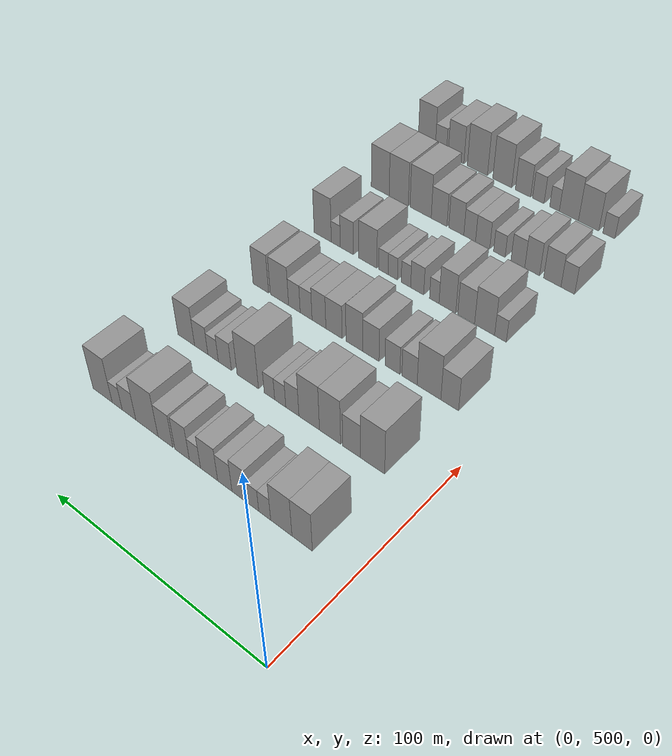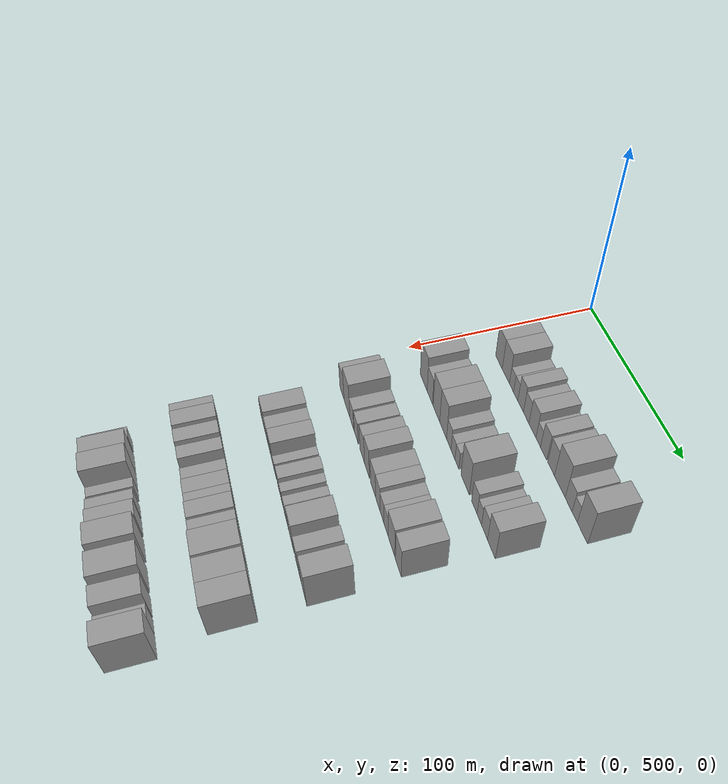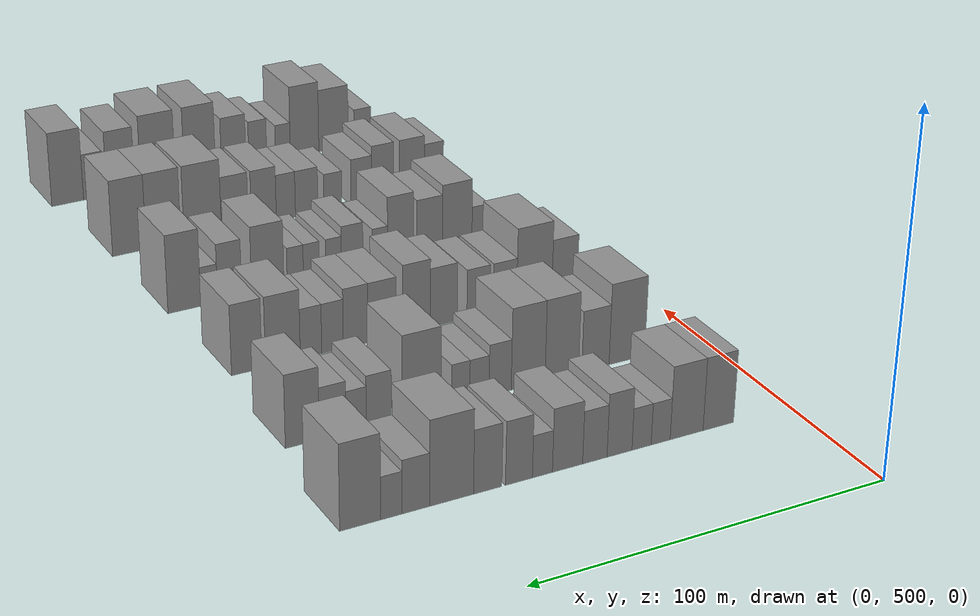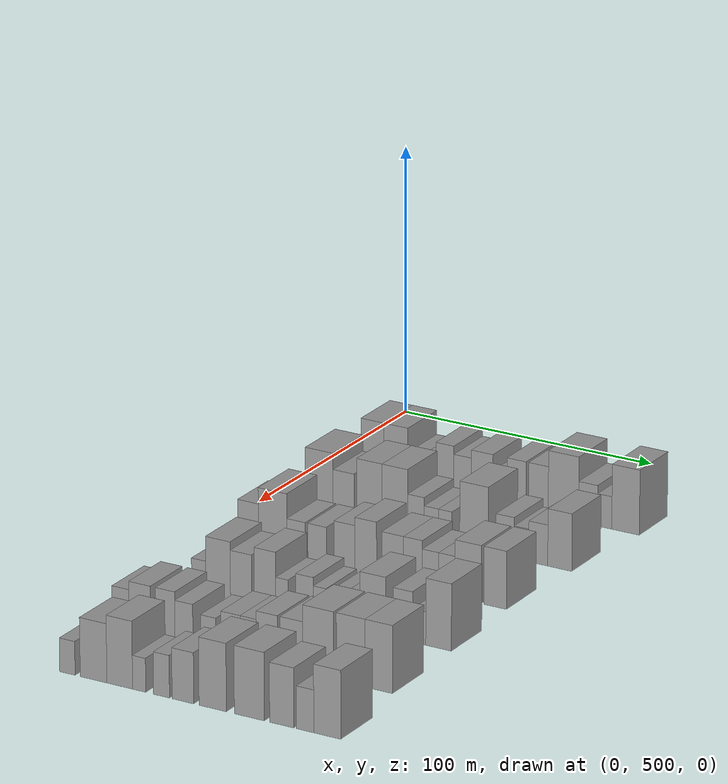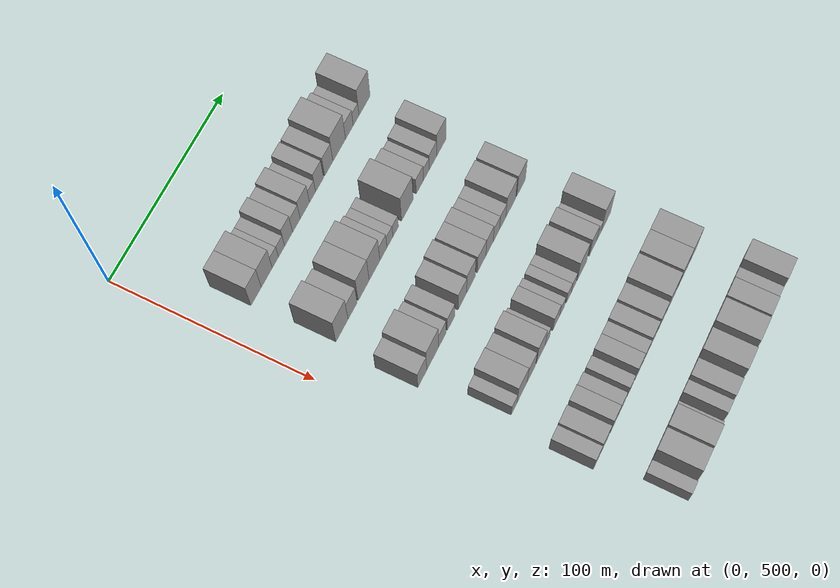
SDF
<sdf version="1.6">
 <world name="default">
  <model name="building_131">
   <static>1</static>
   <pose>50.0000 521.7408 0 0.000000 0.000000 0.000000</pose>
   <link name="link">
    <pose>0 0 10.50 0 0 0</pose>
    <collision name="collision"><geometry><box><size>20.0000 9.2348 21.0000</size></box></geometry></collision>
    <visual name="visual">
     <cast_shadows>0</cast_shadows>
     <geometry><box><size>20.0000 9.2348 21.0000</size></box></geometry>
     <material>
      <script>
       <uri>model://grey_wall/materials/scripts</uri>
       <uri>model://grey_wall/materials/textures</uri>
       <name>vrc/grey_wall</name>
      </script>
     </material>
    </visual>
   </link>
  </model>
  <model name="building_132">
   <static>1</static>
   <pose>50.0000 531.2715 0 0.000000 0.000000 0.000000</pose>
   <link name="link">
    <pose>0 0 10.50 0 0 0</pose>
    <collision name="collision"><geometry><box><size>20.0000 9.8266 21.0000</size></box></geometry></collision>
    <visual name="visual">
     <cast_shadows>0</cast_shadows>
     <geometry><box><size>20.0000 9.8266 21.0000</size></box></geometry>
     <material>
      <script>
       <uri>model://grey_wall/materials/scripts</uri>
       <uri>model://grey_wall/materials/textures</uri>
       <name>vrc/grey_wall</name>
      </script>
     </material>
    </visual>
   </link>
  </model>
  <model name="building_133">
   <static>1</static>
   <pose>50.0000 538.9945 0 0.000000 0.000000 0.000000</pose>
   <link name="link">
    <pose>0 0 6.00 0 0 0</pose>
    <collision name="collision"><geometry><box><size>20.0000 5.6192 12.0000</size></box></geometry></collision>
    <visual name="visual">
     <cast_shadows>0</cast_shadows>
     <geometry><box><size>20.0000 5.6192 12.0000</size></box></geometry>
     <material>
      <script>
       <uri>model://grey_wall/materials/scripts</uri>
       <uri>model://grey_wall/materials/textures</uri>
       <name>vrc/grey_wall</name>
      </script>
     </material>
    </visual>
   </link>
  </model>
  <model name="building_134">
   <static>1</static>
   <pose>50.0000 544.6133 0 0.000000 0.000000 0.000000</pose>
   <link name="link">
    <pose>0 0 6.00 0 0 0</pose>
    <collision name="collision"><geometry><box><size>20.0000 5.6184 12.0000</size></box></geometry></collision>
    <visual name="visual">
     <cast_shadows>0</cast_shadows>
     <geometry><box><size>20.0000 5.6184 12.0000</size></box></geometry>
     <material>
      <script>
       <uri>model://grey_wall/materials/scripts</uri>
       <uri>model://grey_wall/materials/textures</uri>
       <name>vrc/grey_wall</name>
      </script>
     </material>
    </visual>
   </link>
  </model>
  <model name="building_135">
   <static>1</static>
   <pose>50.0000 551.0508 0 0.000000 0.000000 0.000000</pose>
   <link name="link">
    <pose>0 0 9.00 0 0 0</pose>
    <collision name="collision"><geometry><box><size>20.0000 7.2566 18.0000</size></box></geometry></collision>
    <visual name="visual">
     <cast_shadows>0</cast_shadows>
     <geometry><box><size>20.0000 7.2566 18.0000</size></box></geometry>
     <material>
      <script>
       <uri>model://grey_wall/materials/scripts</uri>
       <uri>model://grey_wall/materials/textures</uri>
       <name>vrc/grey_wall</name>
      </script>
     </material>
    </visual>
   </link>
  </model>
  <model name="building_136">
   <static>1</static>
   <pose>50.0000 558.1963 0 0.000000 0.000000 0.000000</pose>
   <link name="link">
    <pose>0 0 7.50 0 0 0</pose>
    <collision name="collision"><geometry><box><size>20.0000 7.0344 15.0000</size></box></geometry></collision>
    <visual name="visual">
     <cast_shadows>0</cast_shadows>
     <geometry><box><size>20.0000 7.0344 15.0000</size></box></geometry>
     <material>
      <script>
       <uri>model://grey_wall/materials/scripts</uri>
       <uri>model://grey_wall/materials/textures</uri>
       <name>vrc/grey_wall</name>
      </script>
     </material>
    </visual>
   </link>
  </model>
  <model name="building_137">
   <static>1</static>
   <pose>50.0000 566.0190 0 0.000000 0.000000 0.000000</pose>
   <link name="link">
    <pose>0 0 9.00 0 0 0</pose>
    <collision name="collision"><geometry><box><size>20.0000 8.6110 18.0000</size></box></geometry></collision>
    <visual name="visual">
     <cast_shadows>0</cast_shadows>
     <geometry><box><size>20.0000 8.6110 18.0000</size></box></geometry>
     <material>
      <script>
       <uri>model://grey_wall/materials/scripts</uri>
       <uri>model://grey_wall/materials/textures</uri>
       <name>vrc/grey_wall</name>
      </script>
     </material>
    </visual>
   </link>
  </model>
  <model name="building_138">
   <static>1</static>
   <pose>50.0000 573.1528 0 0.000000 0.000000 0.000000</pose>
   <link name="link">
    <pose>0 0 6.00 0 0 0</pose>
    <collision name="collision"><geometry><box><size>20.0000 5.6566 12.0000</size></box></geometry></collision>
    <visual name="visual">
     <cast_shadows>0</cast_shadows>
     <geometry><box><size>20.0000 5.6566 12.0000</size></box></geometry>
     <material>
      <script>
       <uri>model://grey_wall/materials/scripts</uri>
       <uri>model://grey_wall/materials/textures</uri>
       <name>vrc/grey_wall</name>
      </script>
     </material>
    </visual>
   </link>
  </model>
  <model name="building_139">
   <static>1</static>
   <pose>50.0000 579.7498 0 0.000000 0.000000 0.000000</pose>
   <link name="link">
    <pose>0 0 9.00 0 0 0</pose>
    <collision name="collision"><geometry><box><size>20.0000 7.5374 18.0000</size></box></geometry></collision>
    <visual name="visual">
     <cast_shadows>0</cast_shadows>
     <geometry><box><size>20.0000 7.5374 18.0000</size></box></geometry>
     <material>
      <script>
       <uri>model://grey_wall/materials/scripts</uri>
       <uri>model://grey_wall/materials/textures</uri>
       <name>vrc/grey_wall</name>
      </script>
     </material>
    </visual>
   </link>
  </model>
  <model name="building_140">
   <static>1</static>
   <pose>50.0000 588.4278 0 0.000000 0.000000 0.000000</pose>
   <link name="link">
    <pose>0 0 9.00 0 0 0</pose>
    <collision name="collision"><geometry><box><size>20.0000 7.8184 18.0000</size></box></geometry></collision>
    <visual name="visual">
     <cast_shadows>0</cast_shadows>
     <geometry><box><size>20.0000 7.8184 18.0000</size></box></geometry>
     <material>
      <script>
       <uri>model://grey_wall/materials/scripts</uri>
       <uri>model://grey_wall/materials/textures</uri>
       <name>vrc/grey_wall</name>
      </script>
     </material>
    </visual>
   </link>
  </model>
  <model name="building_141">
   <static>1</static>
   <pose>50.0000 598.3368 0 0.000000 0.000000 0.000000</pose>
   <link name="link">
    <pose>0 0 12.00 0 0 0</pose>
    <collision name="collision"><geometry><box><size>20.0000 11.9997 24.0000</size></box></geometry></collision>
    <visual name="visual">
     <cast_shadows>0</cast_shadows>
     <geometry><box><size>20.0000 11.9997 24.0000</size></box></geometry>
     <material>
      <script>
       <uri>model://grey_wall/materials/scripts</uri>
       <uri>model://grey_wall/materials/textures</uri>
       <name>vrc/grey_wall</name>
      </script>
     </material>
    </visual>
   </link>
  </model>
  <model name="building_142">
   <static>1</static>
   <pose>50.0000 608.0740 0 0.000000 0.000000 0.000000</pose>
   <link name="link">
    <pose>0 0 7.50 0 0 0</pose>
    <collision name="collision"><geometry><box><size>20.0000 7.4747 15.0000</size></box></geometry></collision>
    <visual name="visual">
     <cast_shadows>0</cast_shadows>
     <geometry><box><size>20.0000 7.4747 15.0000</size></box></geometry>
     <material>
      <script>
       <uri>model://grey_wall/materials/scripts</uri>
       <uri>model://grey_wall/materials/textures</uri>
       <name>vrc/grey_wall</name>
      </script>
     </material>
    </visual>
   </link>
  </model>
  <model name="building_143">
   <static>1</static>
   <pose>50.0000 614.6092 0 0.000000 0.000000 0.000000</pose>
   <link name="link">
    <pose>0 0 6.00 0 0 0</pose>
    <collision name="collision"><geometry><box><size>20.0000 5.5957 12.0000</size></box></geometry></collision>
    <visual name="visual">
     <cast_shadows>0</cast_shadows>
     <geometry><box><size>20.0000 5.5957 12.0000</size></box></geometry>
     <material>
      <script>
       <uri>model://grey_wall/materials/scripts</uri>
       <uri>model://grey_wall/materials/textures</uri>
       <name>vrc/grey_wall</name>
      </script>
     </material>
    </visual>
   </link>
  </model>
  <model name="building_144">
   <static>1</static>
   <pose>50.0000 622.8073 0 0.000000 0.000000 0.000000</pose>
   <link name="link">
    <pose>0 0 12.00 0 0 0</pose>
    <collision name="collision"><geometry><box><size>20.0000 10.8005 24.0000</size></box></geometry></collision>
    <visual name="visual">
     <cast_shadows>0</cast_shadows>
     <geometry><box><size>20.0000 10.8005 24.0000</size></box></geometry>
     <material>
      <script>
       <uri>model://grey_wall/materials/scripts</uri>
       <uri>model://grey_wall/materials/textures</uri>
       <name>vrc/grey_wall</name>
      </script>
     </material>
    </visual>
   </link>
  </model>
  <model name="building_270">
   <static>1</static>
   <pose>90.0000 524.2564 0 0.000000 0.000000 0.000000</pose>
   <link name="link">
    <pose>0 0 12.00 0 0 0</pose>
    <collision name="collision"><geometry><box><size>20.0000 11.1245 24.0000</size></box></geometry></collision>
    <visual name="visual">
     <cast_shadows>0</cast_shadows>
     <geometry><box><size>20.0000 11.1245 24.0000</size></box></geometry>
     <material>
      <script>
       <uri>model://grey_wall/materials/scripts</uri>
       <uri>model://grey_wall/materials/textures</uri>
       <name>vrc/grey_wall</name>
      </script>
     </material>
    </visual>
   </link>
  </model>
  <model name="building_271">
   <static>1</static>
   <pose>90.0000 534.0324 0 0.000000 0.000000 0.000000</pose>
   <link name="link">
    <pose>0 0 9.00 0 0 0</pose>
    <collision name="collision"><geometry><box><size>20.0000 8.4276 18.0000</size></box></geometry></collision>
    <visual name="visual">
     <cast_shadows>0</cast_shadows>
     <geometry><box><size>20.0000 8.4276 18.0000</size></box></geometry>
     <material>
      <script>
       <uri>model://grey_wall/materials/scripts</uri>
       <uri>model://grey_wall/materials/textures</uri>
       <name>vrc/grey_wall</name>
      </script>
     </material>
    </visual>
   </link>
  </model>
  <model name="building_272">
   <static>1</static>
   <pose>90.0000 544.3487 0 0.000000 0.000000 0.000000</pose>
   <link name="link">
    <pose>0 0 12.00 0 0 0</pose>
    <collision name="collision"><geometry><box><size>20.0000 10.2050 24.0000</size></box></geometry></collision>
    <visual name="visual">
     <cast_shadows>0</cast_shadows>
     <geometry><box><size>20.0000 10.2050 24.0000</size></box></geometry>
     <material>
      <script>
       <uri>model://grey_wall/materials/scripts</uri>
       <uri>model://grey_wall/materials/textures</uri>
       <name>vrc/grey_wall</name>
      </script>
     </material>
    </visual>
   </link>
  </model>
  <model name="building_273">
   <static>1</static>
   <pose>90.0000 554.5159 0 0.000000 0.000000 0.000000</pose>
   <link name="link">
    <pose>0 0 12.00 0 0 0</pose>
    <collision name="collision"><geometry><box><size>20.0000 10.1295 24.0000</size></box></geometry></collision>
    <visual name="visual">
     <cast_shadows>0</cast_shadows>
     <geometry><box><size>20.0000 10.1295 24.0000</size></box></geometry>
     <material>
      <script>
       <uri>model://grey_wall/materials/scripts</uri>
       <uri>model://grey_wall/materials/textures</uri>
       <name>vrc/grey_wall</name>
      </script>
     </material>
    </visual>
   </link>
  </model>
  <model name="building_274">
   <static>1</static>
   <pose>90.0000 562.8839 0 0.000000 0.000000 0.000000</pose>
   <link name="link">
    <pose>0 0 7.50 0 0 0</pose>
    <collision name="collision"><geometry><box><size>20.0000 6.6065 15.0000</size></box></geometry></collision>
    <visual name="visual">
     <cast_shadows>0</cast_shadows>
     <geometry><box><size>20.0000 6.6065 15.0000</size></box></geometry>
     <material>
      <script>
       <uri>model://grey_wall/materials/scripts</uri>
       <uri>model://grey_wall/materials/textures</uri>
       <name>vrc/grey_wall</name>
      </script>
     </material>
    </visual>
   </link>
  </model>
  <model name="building_275">
   <static>1</static>
   <pose>90.0000 569.0177 0 0.000000 0.000000 0.000000</pose>
   <link name="link">
    <pose>0 0 6.00 0 0 0</pose>
    <collision name="collision"><geometry><box><size>20.0000 5.6609 12.0000</size></box></geometry></collision>
    <visual name="visual">
     <cast_shadows>0</cast_shadows>
     <geometry><box><size>20.0000 5.6609 12.0000</size></box></geometry>
     <material>
      <script>
       <uri>model://grey_wall/materials/scripts</uri>
       <uri>model://grey_wall/materials/textures</uri>
       <name>vrc/grey_wall</name>
      </script>
     </material>
    </visual>
   </link>
  </model>
  <model name="building_276">
   <static>1</static>
   <pose>90.0000 574.5336 0 0.000000 0.000000 0.000000</pose>
   <link name="link">
    <pose>0 0 6.00 0 0 0</pose>
    <collision name="collision"><geometry><box><size>20.0000 5.3709 12.0000</size></box></geometry></collision>
    <visual name="visual">
     <cast_shadows>0</cast_shadows>
     <geometry><box><size>20.0000 5.3709 12.0000</size></box></geometry>
     <material>
      <script>
       <uri>model://grey_wall/materials/scripts</uri>
       <uri>model://grey_wall/materials/textures</uri>
       <name>vrc/grey_wall</name>
      </script>
     </material>
    </visual>
   </link>
  </model>
  <model name="building_277">
   <static>1</static>
   <pose>90.0000 585.8658 0 0.000000 0.000000 0.000000</pose>
   <link name="link">
    <pose>0 0 12.00 0 0 0</pose>
    <collision name="collision"><geometry><box><size>20.0000 11.2936 24.0000</size></box></geometry></collision>
    <visual name="visual">
     <cast_shadows>0</cast_shadows>
     <geometry><box><size>20.0000 11.2936 24.0000</size></box></geometry>
     <material>
      <script>
       <uri>model://grey_wall/materials/scripts</uri>
       <uri>model://grey_wall/materials/textures</uri>
       <name>vrc/grey_wall</name>
      </script>
     </material>
    </visual>
   </link>
  </model>
  <model name="building_278">
   <static>1</static>
   <pose>90.0000 598.0640 0 0.000000 0.000000 0.000000</pose>
   <link name="link">
    <pose>0 0 7.50 0 0 0</pose>
    <collision name="collision"><geometry><box><size>20.0000 7.1029 15.0000</size></box></geometry></collision>
    <visual name="visual">
     <cast_shadows>0</cast_shadows>
     <geometry><box><size>20.0000 7.1029 15.0000</size></box></geometry>
     <material>
      <script>
       <uri>model://grey_wall/materials/scripts</uri>
       <uri>model://grey_wall/materials/textures</uri>
       <name>vrc/grey_wall</name>
      </script>
     </material>
    </visual>
   </link>
  </model>
  <model name="building_279">
   <static>1</static>
   <pose>90.0000 604.4765 0 0.000000 0.000000 0.000000</pose>
   <link name="link">
    <pose>0 0 6.00 0 0 0</pose>
    <collision name="collision"><geometry><box><size>20.0000 5.7220 12.0000</size></box></geometry></collision>
    <visual name="visual">
     <cast_shadows>0</cast_shadows>
     <geometry><box><size>20.0000 5.7220 12.0000</size></box></geometry>
     <material>
      <script>
       <uri>model://grey_wall/materials/scripts</uri>
       <uri>model://grey_wall/materials/textures</uri>
       <name>vrc/grey_wall</name>
      </script>
     </material>
    </visual>
   </link>
  </model>
  <model name="building_280">
   <static>1</static>
   <pose>90.0000 611.0382 0 0.000000 0.000000 0.000000</pose>
   <link name="link">
    <pose>0 0 7.50 0 0 0</pose>
    <collision name="collision"><geometry><box><size>20.0000 7.4013 15.0000</size></box></geometry></collision>
    <visual name="visual">
     <cast_shadows>0</cast_shadows>
     <geometry><box><size>20.0000 7.4013 15.0000</size></box></geometry>
     <material>
      <script>
       <uri>model://grey_wall/materials/scripts</uri>
       <uri>model://grey_wall/materials/textures</uri>
       <name>vrc/grey_wall</name>
      </script>
     </material>
    </visual>
   </link>
  </model>
  <model name="building_281">
   <static>1</static>
   <pose>90.0000 619.4320 0 0.000000 0.000000 0.000000</pose>
   <link name="link">
    <pose>0 0 10.50 0 0 0</pose>
    <collision name="collision"><geometry><box><size>20.0000 9.3862 21.0000</size></box></geometry></collision>
    <visual name="visual">
     <cast_shadows>0</cast_shadows>
     <geometry><box><size>20.0000 9.3862 21.0000</size></box></geometry>
     <material>
      <script>
       <uri>model://grey_wall/materials/scripts</uri>
       <uri>model://grey_wall/materials/textures</uri>
       <name>vrc/grey_wall</name>
      </script>
     </material>
    </visual>
   </link>
  </model>
  <model name="building_398">
   <static>1</static>
   <pose>130.0000 520.1320 0 0.000000 0.000000 0.000000</pose>
   <link name="link">
    <pose>0 0 9.00 0 0 0</pose>
    <collision name="collision"><geometry><box><size>20.0000 8.2636 18.0000</size></box></geometry></collision>
    <visual name="visual">
     <cast_shadows>0</cast_shadows>
     <geometry><box><size>20.0000 8.2636 18.0000</size></box></geometry>
     <material>
      <script>
       <uri>model://grey_wall/materials/scripts</uri>
       <uri>model://grey_wall/materials/textures</uri>
       <name>vrc/grey_wall</name>
      </script>
     </material>
    </visual>
   </link>
  </model>
  <model name="building_399">
   <static>1</static>
   <pose>130.0000 529.9085 0 0.000000 0.000000 0.000000</pose>
   <link name="link">
    <pose>0 0 12.00 0 0 0</pose>
    <collision name="collision"><geometry><box><size>20.0000 11.2896 24.0000</size></box></geometry></collision>
    <visual name="visual">
     <cast_shadows>0</cast_shadows>
     <geometry><box><size>20.0000 11.2896 24.0000</size></box></geometry>
     <material>
      <script>
       <uri>model://grey_wall/materials/scripts</uri>
       <uri>model://grey_wall/materials/textures</uri>
       <name>vrc/grey_wall</name>
      </script>
     </material>
    </visual>
   </link>
  </model>
  <model name="building_400">
   <static>1</static>
   <pose>130.0000 539.2421 0 0.000000 0.000000 0.000000</pose>
   <link name="link">
    <pose>0 0 7.50 0 0 0</pose>
    <collision name="collision"><geometry><box><size>20.0000 7.3776 15.0000</size></box></geometry></collision>
    <visual name="visual">
     <cast_shadows>0</cast_shadows>
     <geometry><box><size>20.0000 7.3776 15.0000</size></box></geometry>
     <material>
      <script>
       <uri>model://grey_wall/materials/scripts</uri>
       <uri>model://grey_wall/materials/textures</uri>
       <name>vrc/grey_wall</name>
      </script>
     </material>
    </visual>
   </link>
  </model>
  <model name="building_401">
   <static>1</static>
   <pose>130.0000 547.5803 0 0.000000 0.000000 0.000000</pose>
   <link name="link">
    <pose>0 0 7.50 0 0 0</pose>
    <collision name="collision"><geometry><box><size>20.0000 7.2987 15.0000</size></box></geometry></collision>
    <visual name="visual">
     <cast_shadows>0</cast_shadows>
     <geometry><box><size>20.0000 7.2987 15.0000</size></box></geometry>
     <material>
      <script>
       <uri>model://grey_wall/materials/scripts</uri>
       <uri>model://grey_wall/materials/textures</uri>
       <name>vrc/grey_wall</name>
      </script>
     </material>
    </visual>
   </link>
  </model>
  <model name="building_402">
   <static>1</static>
   <pose>130.0000 558.3812 0 0.000000 0.000000 0.000000</pose>
   <link name="link">
    <pose>0 0 9.00 0 0 0</pose>
    <collision name="collision"><geometry><box><size>20.0000 8.3031 18.0000</size></box></geometry></collision>
    <visual name="visual">
     <cast_shadows>0</cast_shadows>
     <geometry><box><size>20.0000 8.3031 18.0000</size></box></geometry>
     <material>
      <script>
       <uri>model://grey_wall/materials/scripts</uri>
       <uri>model://grey_wall/materials/textures</uri>
       <name>vrc/grey_wall</name>
      </script>
     </material>
    </visual>
   </link>
  </model>
  <model name="building_403">
   <static>1</static>
   <pose>130.0000 566.7790 0 0.000000 0.000000 0.000000</pose>
   <link name="link">
    <pose>0 0 10.50 0 0 0</pose>
    <collision name="collision"><geometry><box><size>20.0000 8.4926 21.0000</size></box></geometry></collision>
    <visual name="visual">
     <cast_shadows>0</cast_shadows>
     <geometry><box><size>20.0000 8.4926 21.0000</size></box></geometry>
     <material>
      <script>
       <uri>model://grey_wall/materials/scripts</uri>
       <uri>model://grey_wall/materials/textures</uri>
       <name>vrc/grey_wall</name>
      </script>
     </material>
    </visual>
   </link>
  </model>
  <model name="building_404">
   <static>1</static>
   <pose>130.0000 577.2942 0 0.000000 0.000000 0.000000</pose>
   <link name="link">
    <pose>0 0 9.00 0 0 0</pose>
    <collision name="collision"><geometry><box><size>20.0000 8.5377 18.0000</size></box></geometry></collision>
    <visual name="visual">
     <cast_shadows>0</cast_shadows>
     <geometry><box><size>20.0000 8.5377 18.0000</size></box></geometry>
     <material>
      <script>
       <uri>model://grey_wall/materials/scripts</uri>
       <uri>model://grey_wall/materials/textures</uri>
       <name>vrc/grey_wall</name>
      </script>
     </material>
    </visual>
   </link>
  </model>
  <model name="building_405">
   <static>1</static>
   <pose>130.0000 585.2367 0 0.000000 0.000000 0.000000</pose>
   <link name="link">
    <pose>0 0 9.00 0 0 0</pose>
    <collision name="collision"><geometry><box><size>20.0000 7.3474 18.0000</size></box></geometry></collision>
    <visual name="visual">
     <cast_shadows>0</cast_shadows>
     <geometry><box><size>20.0000 7.3474 18.0000</size></box></geometry>
     <material>
      <script>
       <uri>model://grey_wall/materials/scripts</uri>
       <uri>model://grey_wall/materials/textures</uri>
       <name>vrc/grey_wall</name>
      </script>
     </material>
    </visual>
   </link>
  </model>
  <model name="building_406">
   <static>1</static>
   <pose>130.0000 592.1115 0 0.000000 0.000000 0.000000</pose>
   <link name="link">
    <pose>0 0 7.50 0 0 0</pose>
    <collision name="collision"><geometry><box><size>20.0000 6.4022 15.0000</size></box></geometry></collision>
    <visual name="visual">
     <cast_shadows>0</cast_shadows>
     <geometry><box><size>20.0000 6.4022 15.0000</size></box></geometry>
     <material>
      <script>
       <uri>model://grey_wall/materials/scripts</uri>
       <uri>model://grey_wall/materials/textures</uri>
       <name>vrc/grey_wall</name>
      </script>
     </material>
    </visual>
   </link>
  </model>
  <model name="building_407">
   <static>1</static>
   <pose>130.0000 598.4785 0 0.000000 0.000000 0.000000</pose>
   <link name="link">
    <pose>0 0 7.50 0 0 0</pose>
    <collision name="collision"><geometry><box><size>20.0000 6.3319 15.0000</size></box></geometry></collision>
    <visual name="visual">
     <cast_shadows>0</cast_shadows>
     <geometry><box><size>20.0000 6.3319 15.0000</size></box></geometry>
     <material>
      <script>
       <uri>model://grey_wall/materials/scripts</uri>
       <uri>model://grey_wall/materials/textures</uri>
       <name>vrc/grey_wall</name>
      </script>
     </material>
    </visual>
   </link>
  </model>
  <model name="building_408">
   <static>1</static>
   <pose>130.0000 606.7160 0 0.000000 0.000000 0.000000</pose>
   <link name="link">
    <pose>0 0 10.50 0 0 0</pose>
    <collision name="collision"><geometry><box><size>20.0000 10.1430 21.0000</size></box></geometry></collision>
    <visual name="visual">
     <cast_shadows>0</cast_shadows>
     <geometry><box><size>20.0000 10.1430 21.0000</size></box></geometry>
     <material>
      <script>
       <uri>model://grey_wall/materials/scripts</uri>
       <uri>model://grey_wall/materials/textures</uri>
       <name>vrc/grey_wall</name>
      </script>
     </material>
    </visual>
   </link>
  </model>
  <model name="building_409">
   <static>1</static>
   <pose>130.0000 617.1709 0 0.000000 0.000000 0.000000</pose>
   <link name="link">
    <pose>0 0 10.50 0 0 0</pose>
    <collision name="collision"><geometry><box><size>20.0000 8.7667 21.0000</size></box></geometry></collision>
    <visual name="visual">
     <cast_shadows>0</cast_shadows>
     <geometry><box><size>20.0000 8.7667 21.0000</size></box></geometry>
     <material>
      <script>
       <uri>model://grey_wall/materials/scripts</uri>
       <uri>model://grey_wall/materials/textures</uri>
       <name>vrc/grey_wall</name>
      </script>
     </material>
    </visual>
   </link>
  </model>
  <model name="building_540">
   <static>1</static>
   <pose>170.0000 525.2688 0 0.000000 0.000000 0.000000</pose>
   <link name="link">
    <pose>0 0 6.00 0 0 0</pose>
    <collision name="collision"><geometry><box><size>20.0000 5.6138 12.0000</size></box></geometry></collision>
    <visual name="visual">
     <cast_shadows>0</cast_shadows>
     <geometry><box><size>20.0000 5.6138 12.0000</size></box></geometry>
     <material>
      <script>
       <uri>model://grey_wall/materials/scripts</uri>
       <uri>model://grey_wall/materials/textures</uri>
       <name>vrc/grey_wall</name>
      </script>
     </material>
    </visual>
   </link>
  </model>
  <model name="building_541">
   <static>1</static>
   <pose>170.0000 532.9487 0 0.000000 0.000000 0.000000</pose>
   <link name="link">
    <pose>0 0 10.50 0 0 0</pose>
    <collision name="collision"><geometry><box><size>20.0000 9.7461 21.0000</size></box></geometry></collision>
    <visual name="visual">
     <cast_shadows>0</cast_shadows>
     <geometry><box><size>20.0000 9.7461 21.0000</size></box></geometry>
     <material>
      <script>
       <uri>model://grey_wall/materials/scripts</uri>
       <uri>model://grey_wall/materials/textures</uri>
       <name>vrc/grey_wall</name>
      </script>
     </material>
    </visual>
   </link>
  </model>
  <model name="building_542">
   <static>1</static>
   <pose>170.0000 541.9989 0 0.000000 0.000000 0.000000</pose>
   <link name="link">
    <pose>0 0 9.00 0 0 0</pose>
    <collision name="collision"><geometry><box><size>20.0000 8.3542 18.0000</size></box></geometry></collision>
    <visual name="visual">
     <cast_shadows>0</cast_shadows>
     <geometry><box><size>20.0000 8.3542 18.0000</size></box></geometry>
     <material>
      <script>
       <uri>model://grey_wall/materials/scripts</uri>
       <uri>model://grey_wall/materials/textures</uri>
       <name>vrc/grey_wall</name>
      </script>
     </material>
    </visual>
   </link>
  </model>
  <model name="building_543">
   <static>1</static>
   <pose>170.0000 551.4173 0 0.000000 0.000000 0.000000</pose>
   <link name="link">
    <pose>0 0 10.50 0 0 0</pose>
    <collision name="collision"><geometry><box><size>20.0000 8.4827 21.0000</size></box></geometry></collision>
    <visual name="visual">
     <cast_shadows>0</cast_shadows>
     <geometry><box><size>20.0000 8.4827 21.0000</size></box></geometry>
     <material>
      <script>
       <uri>model://grey_wall/materials/scripts</uri>
       <uri>model://grey_wall/materials/textures</uri>
       <name>vrc/grey_wall</name>
      </script>
     </material>
    </visual>
   </link>
  </model>
  <model name="building_544">
   <static>1</static>
   <pose>170.0000 558.0807 0 0.000000 0.000000 0.000000</pose>
   <link name="link">
    <pose>0 0 6.00 0 0 0</pose>
    <collision name="collision"><geometry><box><size>20.0000 4.8441 12.0000</size></box></geometry></collision>
    <visual name="visual">
     <cast_shadows>0</cast_shadows>
     <geometry><box><size>20.0000 4.8441 12.0000</size></box></geometry>
     <material>
      <script>
       <uri>model://grey_wall/materials/scripts</uri>
       <uri>model://grey_wall/materials/textures</uri>
       <name>vrc/grey_wall</name>
      </script>
     </material>
    </visual>
   </link>
  </model>
  <model name="building_545">
   <static>1</static>
   <pose>170.0000 566.9125 0 0.000000 0.000000 0.000000</pose>
   <link name="link">
    <pose>0 0 7.50 0 0 0</pose>
    <collision name="collision"><geometry><box><size>20.0000 6.8195 15.0000</size></box></geometry></collision>
    <visual name="visual">
     <cast_shadows>0</cast_shadows>
     <geometry><box><size>20.0000 6.8195 15.0000</size></box></geometry>
     <material>
      <script>
       <uri>model://grey_wall/materials/scripts</uri>
       <uri>model://grey_wall/materials/textures</uri>
       <name>vrc/grey_wall</name>
      </script>
     </material>
    </visual>
   </link>
  </model>
  <model name="building_546">
   <static>1</static>
   <pose>170.0000 572.8079 0 0.000000 0.000000 0.000000</pose>
   <link name="link">
    <pose>0 0 6.00 0 0 0</pose>
    <collision name="collision"><geometry><box><size>20.0000 4.9712 12.0000</size></box></geometry></collision>
    <visual name="visual">
     <cast_shadows>0</cast_shadows>
     <geometry><box><size>20.0000 4.9712 12.0000</size></box></geometry>
     <material>
      <script>
       <uri>model://grey_wall/materials/scripts</uri>
       <uri>model://grey_wall/materials/textures</uri>
       <name>vrc/grey_wall</name>
      </script>
     </material>
    </visual>
   </link>
  </model>
  <model name="building_547">
   <static>1</static>
   <pose>170.0000 579.7731 0 0.000000 0.000000 0.000000</pose>
   <link name="link">
    <pose>0 0 6.00 0 0 0</pose>
    <collision name="collision"><geometry><box><size>20.0000 4.9594 12.0000</size></box></geometry></collision>
    <visual name="visual">
     <cast_shadows>0</cast_shadows>
     <geometry><box><size>20.0000 4.9594 12.0000</size></box></geometry>
     <material>
      <script>
       <uri>model://grey_wall/materials/scripts</uri>
       <uri>model://grey_wall/materials/textures</uri>
       <name>vrc/grey_wall</name>
      </script>
     </material>
    </visual>
   </link>
  </model>
  <model name="building_548">
   <static>1</static>
   <pose>170.0000 584.7847 0 0.000000 0.000000 0.000000</pose>
   <link name="link">
    <pose>0 0 6.00 0 0 0</pose>
    <collision name="collision"><geometry><box><size>20.0000 5.0638 12.0000</size></box></geometry></collision>
    <visual name="visual">
     <cast_shadows>0</cast_shadows>
     <geometry><box><size>20.0000 5.0638 12.0000</size></box></geometry>
     <material>
      <script>
       <uri>model://grey_wall/materials/scripts</uri>
       <uri>model://grey_wall/materials/textures</uri>
       <name>vrc/grey_wall</name>
      </script>
     </material>
    </visual>
   </link>
  </model>
  <model name="building_549">
   <static>1</static>
   <pose>170.0000 593.2903 0 0.000000 0.000000 0.000000</pose>
   <link name="link">
    <pose>0 0 10.50 0 0 0</pose>
    <collision name="collision"><geometry><box><size>20.0000 9.9474 21.0000</size></box></geometry></collision>
    <visual name="visual">
     <cast_shadows>0</cast_shadows>
     <geometry><box><size>20.0000 9.9474 21.0000</size></box></geometry>
     <material>
      <script>
       <uri>model://grey_wall/materials/scripts</uri>
       <uri>model://grey_wall/materials/textures</uri>
       <name>vrc/grey_wall</name>
      </script>
     </material>
    </visual>
   </link>
  </model>
  <model name="building_550">
   <static>1</static>
   <pose>170.0000 604.9289 0 0.000000 0.000000 0.000000</pose>
   <link name="link">
    <pose>0 0 9.00 0 0 0</pose>
    <collision name="collision"><geometry><box><size>20.0000 7.3298 18.0000</size></box></geometry></collision>
    <visual name="visual">
     <cast_shadows>0</cast_shadows>
     <geometry><box><size>20.0000 7.3298 18.0000</size></box></geometry>
     <material>
      <script>
       <uri>model://grey_wall/materials/scripts</uri>
       <uri>model://grey_wall/materials/textures</uri>
       <name>vrc/grey_wall</name>
      </script>
     </material>
    </visual>
   </link>
  </model>
  <model name="building_551">
   <static>1</static>
   <pose>170.0000 611.1289 0 0.000000 0.000000 0.000000</pose>
   <link name="link">
    <pose>0 0 6.00 0 0 0</pose>
    <collision name="collision"><geometry><box><size>20.0000 5.0702 12.0000</size></box></geometry></collision>
    <visual name="visual">
     <cast_shadows>0</cast_shadows>
     <geometry><box><size>20.0000 5.0702 12.0000</size></box></geometry>
     <material>
      <script>
       <uri>model://grey_wall/materials/scripts</uri>
       <uri>model://grey_wall/materials/textures</uri>
       <name>vrc/grey_wall</name>
      </script>
     </material>
    </visual>
   </link>
  </model>
  <model name="building_552">
   <static>1</static>
   <pose>170.0000 618.5764 0 0.000000 0.000000 0.000000</pose>
   <link name="link">
    <pose>0 0 12.00 0 0 0</pose>
    <collision name="collision"><geometry><box><size>20.0000 9.8249 24.0000</size></box></geometry></collision>
    <visual name="visual">
     <cast_shadows>0</cast_shadows>
     <geometry><box><size>20.0000 9.8249 24.0000</size></box></geometry>
     <material>
      <script>
       <uri>model://grey_wall/materials/scripts</uri>
       <uri>model://grey_wall/materials/textures</uri>
       <name>vrc/grey_wall</name>
      </script>
     </material>
    </visual>
   </link>
  </model>
  <model name="building_675">
   <static>1</static>
   <pose>210.0000 519.7817 0 0.000000 0.000000 0.000000</pose>
   <link name="link">
    <pose>0 0 7.50 0 0 0</pose>
    <collision name="collision"><geometry><box><size>20.0000 6.6116 15.0000</size></box></geometry></collision>
    <visual name="visual">
     <cast_shadows>0</cast_shadows>
     <geometry><box><size>20.0000 6.6116 15.0000</size></box></geometry>
     <material>
      <script>
       <uri>model://grey_wall/materials/scripts</uri>
       <uri>model://grey_wall/materials/textures</uri>
       <name>vrc/grey_wall</name>
      </script>
     </material>
    </visual>
   </link>
  </model>
  <model name="building_676">
   <static>1</static>
   <pose>210.0000 527.3534 0 0.000000 0.000000 0.000000</pose>
   <link name="link">
    <pose>0 0 9.00 0 0 0</pose>
    <collision name="collision"><geometry><box><size>20.0000 8.5319 18.0000</size></box></geometry></collision>
    <visual name="visual">
     <cast_shadows>0</cast_shadows>
     <geometry><box><size>20.0000 8.5319 18.0000</size></box></geometry>
     <material>
      <script>
       <uri>model://grey_wall/materials/scripts</uri>
       <uri>model://grey_wall/materials/textures</uri>
       <name>vrc/grey_wall</name>
      </script>
     </material>
    </visual>
   </link>
  </model>
  <model name="building_677">
   <static>1</static>
   <pose>210.0000 537.3360 0 0.000000 0.000000 0.000000</pose>
   <link name="link">
    <pose>0 0 9.00 0 0 0</pose>
    <collision name="collision"><geometry><box><size>20.0000 7.4332 18.0000</size></box></geometry></collision>
    <visual name="visual">
     <cast_shadows>0</cast_shadows>
     <geometry><box><size>20.0000 7.4332 18.0000</size></box></geometry>
     <material>
      <script>
       <uri>model://grey_wall/materials/scripts</uri>
       <uri>model://grey_wall/materials/textures</uri>
       <name>vrc/grey_wall</name>
      </script>
     </material>
    </visual>
   </link>
  </model>
  <model name="building_678">
   <static>1</static>
   <pose>210.0000 544.5583 0 0.000000 0.000000 0.000000</pose>
   <link name="link">
    <pose>0 0 7.50 0 0 0</pose>
    <collision name="collision"><geometry><box><size>20.0000 7.0115 15.0000</size></box></geometry></collision>
    <visual name="visual">
     <cast_shadows>0</cast_shadows>
     <geometry><box><size>20.0000 7.0115 15.0000</size></box></geometry>
     <material>
      <script>
       <uri>model://grey_wall/materials/scripts</uri>
       <uri>model://grey_wall/materials/textures</uri>
       <name>vrc/grey_wall</name>
      </script>
     </material>
    </visual>
   </link>
  </model>
  <model name="building_679">
   <static>1</static>
   <pose>210.0000 554.0517 0 0.000000 0.000000 0.000000</pose>
   <link name="link">
    <pose>0 0 6.00 0 0 0</pose>
    <collision name="collision"><geometry><box><size>20.0000 5.9753 12.0000</size></box></geometry></collision>
    <visual name="visual">
     <cast_shadows>0</cast_shadows>
     <geometry><box><size>20.0000 5.9753 12.0000</size></box></geometry>
     <material>
      <script>
       <uri>model://grey_wall/materials/scripts</uri>
       <uri>model://grey_wall/materials/textures</uri>
       <name>vrc/grey_wall</name>
      </script>
     </material>
    </visual>
   </link>
  </model>
  <model name="building_680">
   <static>1</static>
   <pose>210.0000 562.7595 0 0.000000 0.000000 0.000000</pose>
   <link name="link">
    <pose>0 0 7.50 0 0 0</pose>
    <collision name="collision"><geometry><box><size>20.0000 7.4402 15.0000</size></box></geometry></collision>
    <visual name="visual">
     <cast_shadows>0</cast_shadows>
     <geometry><box><size>20.0000 7.4402 15.0000</size></box></geometry>
     <material>
      <script>
       <uri>model://grey_wall/materials/scripts</uri>
       <uri>model://grey_wall/materials/textures</uri>
       <name>vrc/grey_wall</name>
      </script>
     </material>
    </visual>
   </link>
  </model>
  <model name="building_681">
   <static>1</static>
   <pose>210.0000 569.5972 0 0.000000 0.000000 0.000000</pose>
   <link name="link">
    <pose>0 0 7.50 0 0 0</pose>
    <collision name="collision"><geometry><box><size>20.0000 6.2354 15.0000</size></box></geometry></collision>
    <visual name="visual">
     <cast_shadows>0</cast_shadows>
     <geometry><box><size>20.0000 6.2354 15.0000</size></box></geometry>
     <material>
      <script>
       <uri>model://grey_wall/materials/scripts</uri>
       <uri>model://grey_wall/materials/textures</uri>
       <name>vrc/grey_wall</name>
      </script>
     </material>
    </visual>
   </link>
  </model>
  <model name="building_682">
   <static>1</static>
   <pose>210.0000 576.7744 0 0.000000 0.000000 0.000000</pose>
   <link name="link">
    <pose>0 0 9.00 0 0 0</pose>
    <collision name="collision"><geometry><box><size>20.0000 8.1190 18.0000</size></box></geometry></collision>
    <visual name="visual">
     <cast_shadows>0</cast_shadows>
     <geometry><box><size>20.0000 8.1190 18.0000</size></box></geometry>
     <material>
      <script>
       <uri>model://grey_wall/materials/scripts</uri>
       <uri>model://grey_wall/materials/textures</uri>
       <name>vrc/grey_wall</name>
      </script>
     </material>
    </visual>
   </link>
  </model>
  <model name="building_683">
   <static>1</static>
   <pose>210.0000 586.1523 0 0.000000 0.000000 0.000000</pose>
   <link name="link">
    <pose>0 0 9.00 0 0 0</pose>
    <collision name="collision"><geometry><box><size>20.0000 8.6367 18.0000</size></box></geometry></collision>
    <visual name="visual">
     <cast_shadows>0</cast_shadows>
     <geometry><box><size>20.0000 8.6367 18.0000</size></box></geometry>
     <material>
      <script>
       <uri>model://grey_wall/materials/scripts</uri>
       <uri>model://grey_wall/materials/textures</uri>
       <name>vrc/grey_wall</name>
      </script>
     </material>
    </visual>
   </link>
  </model>
  <model name="building_684">
   <static>1</static>
   <pose>210.0000 596.4003 0 0.000000 0.000000 0.000000</pose>
   <link name="link">
    <pose>0 0 12.00 0 0 0</pose>
    <collision name="collision"><geometry><box><size>20.0000 11.8593 24.0000</size></box></geometry></collision>
    <visual name="visual">
     <cast_shadows>0</cast_shadows>
     <geometry><box><size>20.0000 11.8593 24.0000</size></box></geometry>
     <material>
      <script>
       <uri>model://grey_wall/materials/scripts</uri>
       <uri>model://grey_wall/materials/textures</uri>
       <name>vrc/grey_wall</name>
      </script>
     </material>
    </visual>
   </link>
  </model>
  <model name="building_685">
   <static>1</static>
   <pose>210.0000 608.7782 0 0.000000 0.000000 0.000000</pose>
   <link name="link">
    <pose>0 0 12.00 0 0 0</pose>
    <collision name="collision"><geometry><box><size>20.0000 10.8964 24.0000</size></box></geometry></collision>
    <visual name="visual">
     <cast_shadows>0</cast_shadows>
     <geometry><box><size>20.0000 10.8964 24.0000</size></box></geometry>
     <material>
      <script>
       <uri>model://grey_wall/materials/scripts</uri>
       <uri>model://grey_wall/materials/textures</uri>
       <name>vrc/grey_wall</name>
      </script>
     </material>
    </visual>
   </link>
  </model>
  <model name="building_686">
   <static>1</static>
   <pose>210.0000 619.4271 0 0.000000 0.000000 0.000000</pose>
   <link name="link">
    <pose>0 0 12.00 0 0 0</pose>
    <collision name="collision"><geometry><box><size>20.0000 10.4014 24.0000</size></box></geometry></collision>
    <visual name="visual">
     <cast_shadows>0</cast_shadows>
     <geometry><box><size>20.0000 10.4014 24.0000</size></box></geometry>
     <material>
      <script>
       <uri>model://grey_wall/materials/scripts</uri>
       <uri>model://grey_wall/materials/textures</uri>
       <name>vrc/grey_wall</name>
      </script>
     </material>
    </visual>
   </link>
  </model>
  <model name="building_805">
   <static>1</static>
   <pose>250.0000 524.6874 0 0.000000 0.000000 0.000000</pose>
   <link name="link">
    <pose>0 0 6.00 0 0 0</pose>
    <collision name="collision"><geometry><box><size>20.0000 5.9889 12.0000</size></box></geometry></collision>
    <visual name="visual">
     <cast_shadows>0</cast_shadows>
     <geometry><box><size>20.0000 5.9889 12.0000</size></box></geometry>
     <material>
      <script>
       <uri>model://grey_wall/materials/scripts</uri>
       <uri>model://grey_wall/materials/textures</uri>
       <name>vrc/grey_wall</name>
      </script>
     </material>
    </visual>
   </link>
  </model>
  <model name="building_806">
   <static>1</static>
   <pose>250.0000 534.8649 0 0.000000 0.000000 0.000000</pose>
   <link name="link">
    <pose>0 0 10.50 0 0 0</pose>
    <collision name="collision"><geometry><box><size>20.0000 10.3660 21.0000</size></box></geometry></collision>
    <visual name="visual">
     <cast_shadows>0</cast_shadows>
     <geometry><box><size>20.0000 10.3660 21.0000</size></box></geometry>
     <material>
      <script>
       <uri>model://grey_wall/materials/scripts</uri>
       <uri>model://grey_wall/materials/textures</uri>
       <name>vrc/grey_wall</name>
      </script>
     </material>
    </visual>
   </link>
  </model>
  <model name="building_807">
   <static>1</static>
   <pose>250.0000 545.0107 0 0.000000 0.000000 0.000000</pose>
   <link name="link">
    <pose>0 0 12.00 0 0 0</pose>
    <collision name="collision"><geometry><box><size>20.0000 9.9256 24.0000</size></box></geometry></collision>
    <visual name="visual">
     <cast_shadows>0</cast_shadows>
     <geometry><box><size>20.0000 9.9256 24.0000</size></box></geometry>
     <material>
      <script>
       <uri>model://grey_wall/materials/scripts</uri>
       <uri>model://grey_wall/materials/textures</uri>
       <name>vrc/grey_wall</name>
      </script>
     </material>
    </visual>
   </link>
  </model>
  <model name="building_808">
   <static>1</static>
   <pose>250.0000 552.5122 0 0.000000 0.000000 0.000000</pose>
   <link name="link">
    <pose>0 0 6.00 0 0 0</pose>
    <collision name="collision"><geometry><box><size>20.0000 5.0774 12.0000</size></box></geometry></collision>
    <visual name="visual">
     <cast_shadows>0</cast_shadows>
     <geometry><box><size>20.0000 5.0774 12.0000</size></box></geometry>
     <material>
      <script>
       <uri>model://grey_wall/materials/scripts</uri>
       <uri>model://grey_wall/materials/textures</uri>
       <name>vrc/grey_wall</name>
      </script>
     </material>
    </visual>
   </link>
  </model>
  <model name="building_809">
   <static>1</static>
   <pose>250.0000 561.1104 0 0.000000 0.000000 0.000000</pose>
   <link name="link">
    <pose>0 0 7.50 0 0 0</pose>
    <collision name="collision"><geometry><box><size>20.0000 6.1191 15.0000</size></box></geometry></collision>
    <visual name="visual">
     <cast_shadows>0</cast_shadows>
     <geometry><box><size>20.0000 6.1191 15.0000</size></box></geometry>
     <material>
      <script>
       <uri>model://grey_wall/materials/scripts</uri>
       <uri>model://grey_wall/materials/textures</uri>
       <name>vrc/grey_wall</name>
      </script>
     </material>
    </visual>
   </link>
  </model>
  <model name="building_810">
   <static>1</static>
   <pose>250.0000 569.3221 0 0.000000 0.000000 0.000000</pose>
   <link name="link">
    <pose>0 0 9.00 0 0 0</pose>
    <collision name="collision"><geometry><box><size>20.0000 8.3042 18.0000</size></box></geometry></collision>
    <visual name="visual">
     <cast_shadows>0</cast_shadows>
     <geometry><box><size>20.0000 8.3042 18.0000</size></box></geometry>
     <material>
      <script>
       <uri>model://grey_wall/materials/scripts</uri>
       <uri>model://grey_wall/materials/textures</uri>
       <name>vrc/grey_wall</name>
      </script>
     </material>
    </visual>
   </link>
  </model>
  <model name="building_811">
   <static>1</static>
   <pose>250.0000 580.6978 0 0.000000 0.000000 0.000000</pose>
   <link name="link">
    <pose>0 0 12.00 0 0 0</pose>
    <collision name="collision"><geometry><box><size>20.0000 10.4472 24.0000</size></box></geometry></collision>
    <visual name="visual">
     <cast_shadows>0</cast_shadows>
     <geometry><box><size>20.0000 10.4472 24.0000</size></box></geometry>
     <material>
      <script>
       <uri>model://grey_wall/materials/scripts</uri>
       <uri>model://grey_wall/materials/textures</uri>
       <name>vrc/grey_wall</name>
      </script>
     </material>
    </visual>
   </link>
  </model>
  <model name="building_812">
   <static>1</static>
   <pose>250.0000 594.6039 0 0.000000 0.000000 0.000000</pose>
   <link name="link">
    <pose>0 0 12.00 0 0 0</pose>
    <collision name="collision"><geometry><box><size>20.0000 11.3650 24.0000</size></box></geometry></collision>
    <visual name="visual">
     <cast_shadows>0</cast_shadows>
     <geometry><box><size>20.0000 11.3650 24.0000</size></box></geometry>
     <material>
      <script>
       <uri>model://grey_wall/materials/scripts</uri>
       <uri>model://grey_wall/materials/textures</uri>
       <name>vrc/grey_wall</name>
      </script>
     </material>
    </visual>
   </link>
  </model>
  <model name="building_813">
   <static>1</static>
   <pose>250.0000 606.8397 0 0.000000 0.000000 0.000000</pose>
   <link name="link">
    <pose>0 0 10.50 0 0 0</pose>
    <collision name="collision"><geometry><box><size>20.0000 9.1066 21.0000</size></box></geometry></collision>
    <visual name="visual">
     <cast_shadows>0</cast_shadows>
     <geometry><box><size>20.0000 9.1066 21.0000</size></box></geometry>
     <material>
      <script>
       <uri>model://grey_wall/materials/scripts</uri>
       <uri>model://grey_wall/materials/textures</uri>
       <name>vrc/grey_wall</name>
      </script>
     </material>
    </visual>
   </link>
  </model>
  <model name="building_814">
   <static>1</static>
   <pose>250.0000 615.6516 0 0.000000 0.000000 0.000000</pose>
   <link name="link">
    <pose>0 0 7.50 0 0 0</pose>
    <collision name="collision"><geometry><box><size>20.0000 6.5172 15.0000</size></box></geometry></collision>
    <visual name="visual">
     <cast_shadows>0</cast_shadows>
     <geometry><box><size>20.0000 6.5172 15.0000</size></box></geometry>
     <material>
      <script>
       <uri>model://grey_wall/materials/scripts</uri>
       <uri>model://grey_wall/materials/textures</uri>
       <name>vrc/grey_wall</name>
      </script>
     </material>
    </visual>
   </link>
  </model>
  <model name="building_815">
   <static>1</static>
   <pose>250.0000 623.9781 0 0.000000 0.000000 0.000000</pose>
   <link name="link">
    <pose>0 0 12.00 0 0 0</pose>
    <collision name="collision"><geometry><box><size>20.0000 10.1360 24.0000</size></box></geometry></collision>
    <visual name="visual">
     <cast_shadows>0</cast_shadows>
     <geometry><box><size>20.0000 10.1360 24.0000</size></box></geometry>
     <material>
      <script>
       <uri>model://grey_wall/materials/scripts</uri>
       <uri>model://grey_wall/materials/textures</uri>
       <name>vrc/grey_wall</name>
      </script>
     </material>
    </visual>
   </link>
  </model>
 </world>
</sdf>
